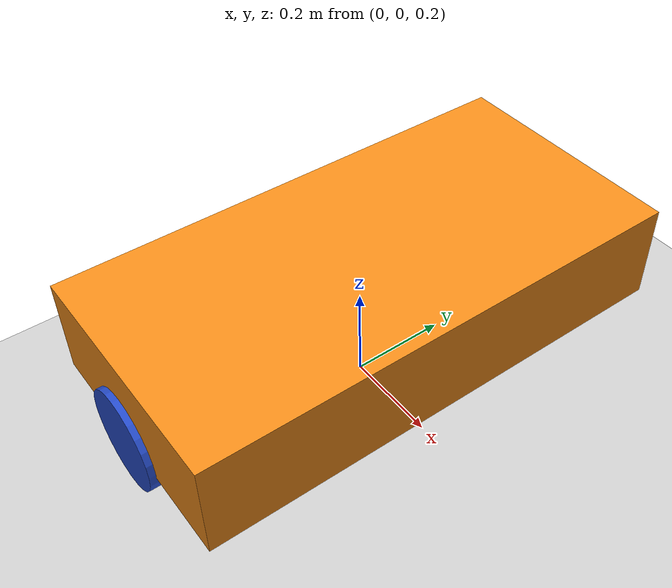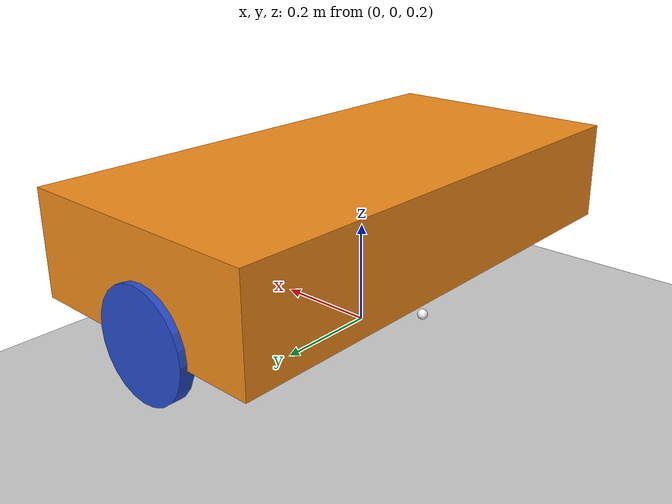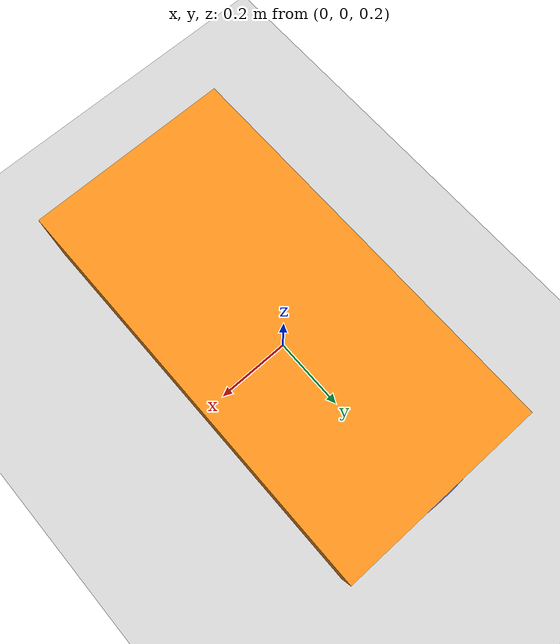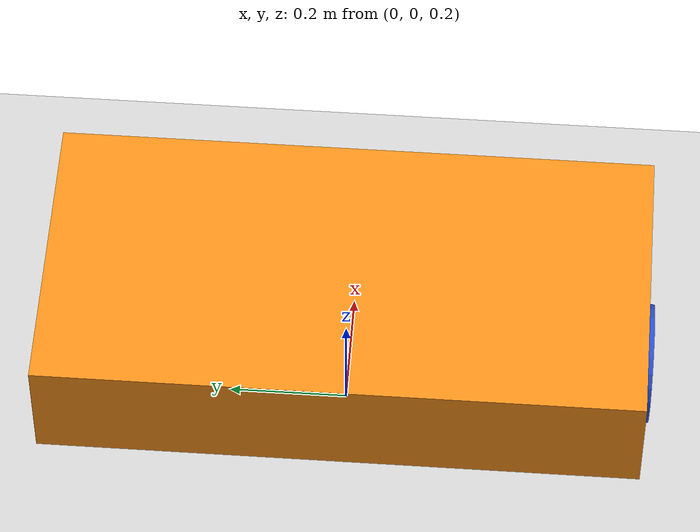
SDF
<?xml version="1.0" ?>
<sdf version="1.8">
  <world name="demo">
    <plugin
      filename="gz-sim-physics-system"
      name="gz::sim::systems::Physics">
    </plugin>
    <plugin
      filename="gz-sim-sensors-system"
      name="gz::sim::systems::Sensors">
      <render_engine>ogre2</render_engine>
    </plugin>
    <plugin
      filename="gz-sim-scene-broadcaster-system"
      name="gz::sim::systems::SceneBroadcaster">
    </plugin>
    <plugin
      filename="gz-sim-user-commands-system"
      name="gz::sim::systems::UserCommands">
    </plugin>

    <light name="sun" type="directional">
      <cast_shadows>true</cast_shadows>
      <pose>0 0 10 0 0 0</pose>
      <diffuse>0.8 0.8 0.8 1</diffuse>
      <specular>0.2 0.2 0.2 1</specular>
      <attenuation>
        <range>1000</range>
        <constant>0.9</constant>
        <linear>0.01</linear>
        <quadratic>0.001</quadratic>
      </attenuation>
      <direction>-0.5 0.1 -0.9</direction>
    </light>

    <model name="ground_plane">
      <static>true</static>
      <link name="link">
        <collision name="collision">
          <geometry>
            <plane>
              <normal>0 0 1</normal>
              <size>100 100</size>
            </plane>
          </geometry>
        </collision>
        <visual name="visual">
          <geometry>
            <plane>
              <normal>0 0 1</normal>
              <size>100 100</size>
            </plane>
          </geometry>
          <material>
            <ambient>0.8 0.8 0.8 1</ambient>
            <diffuse>0.8 0.8 0.8 1</diffuse>
            <specular>0.8 0.8 0.8 1</specular>
          </material>
        </visual>
      </link>
    </model>

    <model name="robot">
      <self_collide>true</self_collide>
      <pose>0 0 0.35 0 0 0</pose>
      <include merge="true">
        <uri>package://robot_description/urdf</uri>
      </include>

      <plugin
        filename="gz-sim-joint-state-publisher-system"
        name="gz::sim::systems::JointStatePublisher">
      </plugin>

      <plugin
        filename="gz-sim-pose-publisher-system"
        name="gz::sim::systems::PosePublisher">
        <publish_link_pose>true</publish_link_pose>
        <use_pose_vector_msg>true</use_pose_vector_msg>
        <static_publisher>true</static_publisher>
        <static_update_frequency>1</static_update_frequency>
      </plugin>

      <plugin
        filename="gz-sim-odometry-publisher-system"
        name="gz::sim::systems::OdometryPublisher">
        <odom_frame>robot/odom</odom_frame>
        <robot_base_frame>robot</robot_base_frame>
      </plugin>
    </model>

  </world>
</sdf>

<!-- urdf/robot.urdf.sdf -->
<sdf version='1.9'>
  <model name='robot'>
    <link name='base_link'>
      <inertial>
        <pose>0.022267326732673232 0 0.088217821782178227 0 0 0</pose>
        <mass>1.01</mass>
        <inertia>
          <ixx>0.086987858745874613</ixx>
          <ixy>0</ixy>
          <ixz>-0.00031188118811881481</ixz>
          <iyy>0.024791076567656799</iyy>
          <iyz>0</iyz>
          <izz>0.10447028448844881</izz>
        </inertia>
      </inertial>
      <collision name='base_link_fixed_joint_lump__chassis_collision'>
        <pose>0.02399999999999999 0 0.090000000000000011 0 0 0</pose>
        <geometry>
          <box>
            <size>0.5 1 0.20000000000000001</size>
          </box>
        </geometry>
        <surface>
          <contact>
            <ode/>
          </contact>
          <friction>
            <ode/>
          </friction>
        </surface>
      </collision>
      <collision name='base_link_fixed_joint_lump__caster_wheel_collision_1'>
        <pose>-0.151 0 -0.090000000000000011 0 0 0</pose>
        <geometry>
          <sphere>
            <radius>0.01</radius>
          </sphere>
        </geometry>
        <surface>
          <contact>
            <ode/>
          </contact>
          <friction>
            <ode>
              <mu>0.001</mu>
              <mu2>0.001</mu2>
            </ode>
          </friction>
        </surface>
      </collision>
      <visual name='base_link_fixed_joint_lump__chassis_visual'>
        <pose>0.02399999999999999 0 0.090000000000000011 0 0 0</pose>
        <geometry>
          <box>
            <size>0.5 1 0.20000000000000001</size>
          </box>
        </geometry>
        <material>
          <script>
            <name>Gazebo/Orange</name>
            <uri>file://media/materials/scripts/gazebo.material</uri>
          </script>
          <diffuse>1 0.37500003 0.125 1</diffuse>
          <ambient>1 0.37500003 0.125 1</ambient>
        </material>
      </visual>
      <visual name='base_link_fixed_joint_lump__caster_wheel_visual_1'>
        <pose>-0.151 0 -0.090000000000000011 0 0 0</pose>
        <geometry>
          <sphere>
            <radius>0.01</radius>
          </sphere>
        </geometry>
        <material>
          <script>
            <name>Gazebo/White</name>
            <uri>file://media/materials/scripts/gazebo.material</uri>
          </script>
          <diffuse>1 1 1 1</diffuse>
          <ambient>1 1 1 1</ambient>
        </material>
      </visual>
    </link>
    <joint name='left_wheel_joint' type='revolute'>
      <pose relative_to='base_link'>0 0.5 0 -1.5707963267948959 0 0</pose>
      <parent>base_link</parent>
      <child>left_wheel</child>
      <axis>
        <xyz>0 0 1</xyz>
        <limit>
          <lower>-inf</lower>
          <upper>inf</upper>
        </limit>
        <dynamics>
          <spring_reference>0</spring_reference>
          <spring_stiffness>0</spring_stiffness>
        </dynamics>
      </axis>
    </joint>
    <link name='left_wheel'>
      <pose relative_to='left_wheel_joint'>0 0 0 0 0 0</pose>
      <inertial>
        <pose>0 0 0 0 0 0</pose>
        <mass>0.050000000000000003</mass>
        <inertia>
          <ixx>0.00012781666666666669</ixx>
          <ixy>0</ixy>
          <ixz>0</ixz>
          <iyy>0.00012781666666666669</iyy>
          <iyz>0</iyz>
          <izz>0.00025000000000000011</izz>
        </inertia>
      </inertial>
      <collision name='left_wheel_collision'>
        <pose>0 0 0 0 0 0</pose>
        <geometry>
          <sphere>
            <radius>0.10000000000000001</radius>
          </sphere>
        </geometry>
        <surface>
          <contact>
            <ode/>
          </contact>
          <friction>
            <ode/>
          </friction>
        </surface>
      </collision>
      <visual name='left_wheel_visual'>
        <pose>0 0 0 0 0 0</pose>
        <geometry>
          <cylinder>
            <length>0.025999999999999999</length>
            <radius>0.10000000000000001</radius>
          </cylinder>
        </geometry>
        <material>
          <script>
            <name>Gazebo/Blue</name>
            <uri>file://media/materials/scripts/gazebo.material</uri>
          </script>
          <diffuse>0.25 0.25 1 1</diffuse>
          <ambient>0.25 0.25 1 1</ambient>
        </material>
      </visual>
    </link>
    <joint name='right_wheel_joint' type='revolute'>
      <pose relative_to='base_link'>0 -0.5 0 1.5707963267948959 0 0</pose>
      <parent>base_link</parent>
      <child>right_wheel</child>
      <axis>
        <xyz>0 0 -1</xyz>
        <limit>
          <lower>-inf</lower>
          <upper>inf</upper>
        </limit>
        <dynamics>
          <spring_reference>0</spring_reference>
          <spring_stiffness>0</spring_stiffness>
        </dynamics>
      </axis>
    </joint>
    <link name='right_wheel'>
      <pose relative_to='right_wheel_joint'>0 0 0 0 0 0</pose>
      <inertial>
        <pose>0 0 0 0 0 0</pose>
        <mass>0.050000000000000003</mass>
        <inertia>
          <ixx>0.00012781666666666669</ixx>
          <ixy>0</ixy>
          <ixz>0</ixz>
          <iyy>0.00012781666666666669</iyy>
          <iyz>0</iyz>
          <izz>0.00025000000000000011</izz>
        </inertia>
      </inertial>
      <collision name='right_wheel_collision'>
        <pose>0 0 0 0 0 0</pose>
        <geometry>
          <sphere>
            <radius>0.10000000000000001</radius>
          </sphere>
        </geometry>
        <surface>
          <contact>
            <ode/>
          </contact>
          <friction>
            <ode/>
          </friction>
        </surface>
      </collision>
      <visual name='right_wheel_visual'>
        <pose>0 0 0 0 0 0</pose>
        <geometry>
          <cylinder>
            <length>0.025999999999999999</length>
            <radius>0.10000000000000001</radius>
          </cylinder>
        </geometry>
        <material>
          <script>
            <name>Gazebo/Blue</name>
            <uri>file://media/materials/scripts/gazebo.material</uri>
          </script>
          <diffuse>0.25 0.25 1 1</diffuse>
          <ambient>0.25 0.25 1 1</ambient>
        </material>
      </visual>
    </link>
    <plugin name='gz::sim::systems::JointStatePublisher' filename='gz-sim-joint-state-publisher-system'/>
    <plugin name='gz::sim::systems::DiffDrive' filename='gz-sim-diff-drive-system'>
      <left_joint>left_wheel_joint</left_joint>
      <right_joint>right_wheel_joint</right_joint>
      <child_frame_id>robot/base_link</child_frame_id>
      <wheel_separation>0.291</wheel_separation>
      <wheel_radius>0.033</wheel_radius>
      <odom_publish_frequency>10</odom_publish_frequency>
    </plugin>
    <frame name='base_footprint_joint' attached_to='base_link'>
      <pose>0 0 -0.13800000000000001 0 0 0</pose>
    </frame>
    <frame name='base_footprint' attached_to='base_footprint_joint'>
      <pose>0 0 0 0 0 0</pose>
    </frame>
    <frame name='caster_wheel_joint' attached_to='chassis'>
      <pose>0.074999999999999997 0 -0.080000000000000016 0 0 0</pose>
    </frame>
    <frame name='caster_wheel' attached_to='caster_wheel_joint'>
      <pose>0 0 0 0 0 0</pose>
    </frame>
    <frame name='chassis_joint' attached_to='base_link'>
      <pose>-0.22600000000000001 0 -0.01 0 0 0</pose>
    </frame>
    <frame name='chassis' attached_to='chassis_joint'>
      <pose>0 0 0 0 0 0</pose>
    </frame>
  </model>
</sdf>
